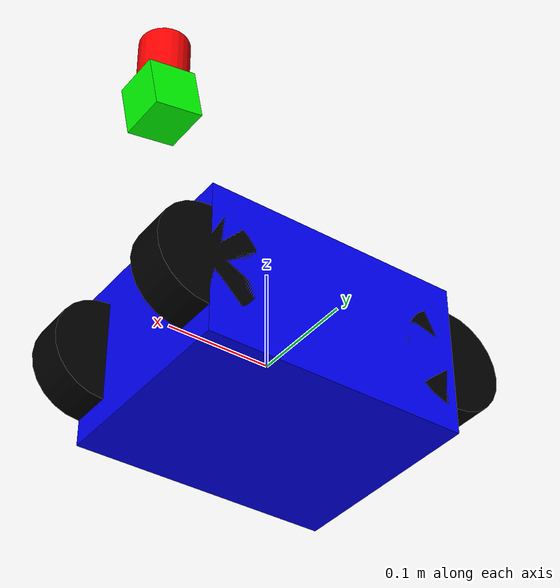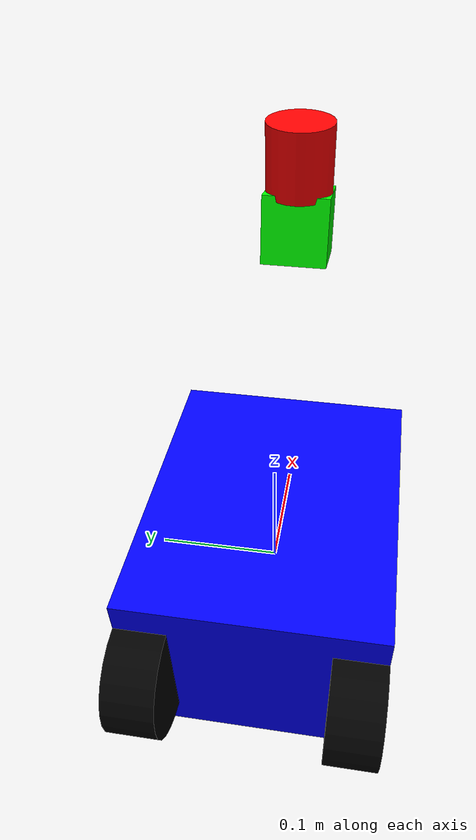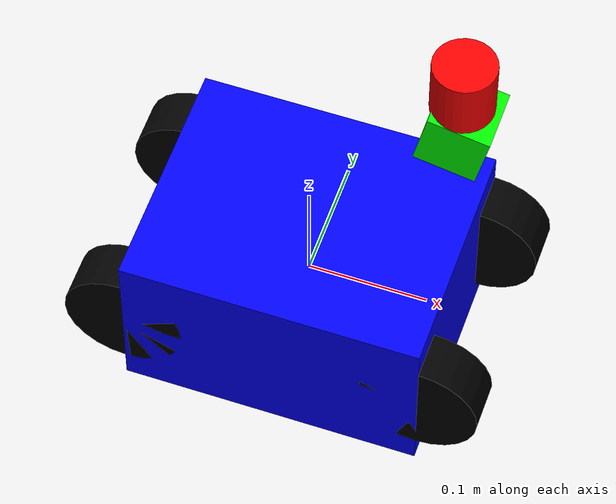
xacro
<?xml version="1.0"?>
<robot xmlns:xacro="http://www.ros.org/wiki/xacro" name="ydlidar_robot_bringup">

  <!-- Constants -->
  <xacro:property name="PI" value="3.14159265359"/>
  <xacro:property name="base_mass" value="5.0"/>
  <xacro:property name="wheel_mass" value="0.5"/>
  <xacro:property name="wheel_radius" value="0.05"/>
  <xacro:property name="wheel_width" value="0.04"/>
  <xacro:property name="wheel_separation" value="0.16"/>
  <xacro:property name="base_length" value="0.25"/>
  <xacro:property name="base_width" value="0.20"/>
  <xacro:property name="base_height" value="0.15"/>

  <!-- Base Link -->
  <link name="base_link">
    <inertial>
      <mass value="${base_mass}"/>
      <inertia ixx="0.01" ixy="0.0" ixz="0.0" iyy="0.01" iyz="0.0" izz="0.02"/>
    </inertial>
    <visual>
      <geometry>
        <box size="${base_length} ${base_width} ${base_height}"/>
      </geometry>
      <material name="blue">
        <color rgba="0.0 0.0 1.0 1.0"/>
      </material>
    </visual>
    <collision>
      <geometry>
        <box size="${base_length} ${base_width} ${base_height}"/>
      </geometry>
    </collision>
  </link>

  <!-- Wheel Macro -->
  <xacro:macro name="wheel" params="name x_pos y_pos">
    <link name="${name}_link">
      <inertial>
        <mass value="${wheel_mass}"/>
        <inertia ixx="0.001" ixy="0.0" ixz="0.0" iyy="0.001" iyz="0.0" izz="0.001"/>
      </inertial>
      <visual>
        <geometry>
          <cylinder radius="${wheel_radius}" length="${wheel_width}"/>
        </geometry>
        <origin xyz="0 0 0" rpy="${PI/2} 0 0"/>
        <material name="black">
          <color rgba="0 0 0 1"/>
        </material>
      </visual>
      <collision>
        <geometry>
          <cylinder radius="${wheel_radius}" length="${wheel_width}"/>
        </geometry>
        <origin xyz="0 0 0" rpy="${PI/2} 0 0"/>
      </collision>
    </link>

    <joint name="${name}_joint" type="revolute">
      <parent link="base_link"/>
      <child link="${name}_link"/>
      <origin xyz="${x_pos} ${y_pos} 0" rpy="0 0 0"/>
      <axis xyz="0 1 0"/>
      <limit effort="10" velocity="5" lower="-${PI}" upper="${PI}"/>
      <dynamics damping="0.1"/>
    </joint>
  </xacro:macro>

  <!-- 4 Wheels -->
  <xacro:wheel name="wheel_front_left" x_pos="${base_length/2}" y_pos="${wheel_separation/2}"/>
  <xacro:wheel name="wheel_front_right" x_pos="${base_length/2}" y_pos="${-wheel_separation/2}"/>
  <xacro:wheel name="wheel_rear_left" x_pos="${-base_length/2}" y_pos="${wheel_separation/2}"/>
  <xacro:wheel name="wheel_rear_right" x_pos="${-base_length/2}" y_pos="${-wheel_separation/2}"/>

  <!-- Laser/LIDAR Frame -->
  <link name="laser_frame">
    <inertial>
      <mass value="0.2"/>
      <inertia ixx="0.0001" ixy="0.0" ixz="0.0" iyy="0.0001" iyz="0.0" izz="0.0001"/>
    </inertial>
    <visual>
      <geometry>
        <cylinder radius="0.025" length="0.05"/>
      </geometry>
      <material name="red">
        <color rgba="1 0 0 1"/>
      </material>
    </visual>
  </link>

  <joint name="laser_joint" type="fixed">
    <parent link="base_link"/>
    <child link="laser_frame"/>
    <origin xyz="0.12 0 0.3" rpy="0 0 0"/>
  </joint>

  <!-- Camera Frame (cho object detection) -->
  <link name="camera_frame">
    <inertial>
      <mass value="0.1"/>
      <inertia ixx="0.00001" ixy="0.0" ixz="0.0" iyy="0.00001" iyz="0.0" izz="0.00001"/>
    </inertial>
    <visual>
      <geometry>
        <box size="0.05 0.05 0.05"/>
      </geometry>
      <material name="green">
        <color rgba="0 1 0 1"/>
      </material>
    </visual>
  </link>

  <joint name="camera_joint" type="fixed">
    <parent link="base_link"/>
    <child link="camera_frame"/>
    <origin xyz="0.12 0 0.25" rpy="0 0.2 0"/>
  </joint>

  <!-- Servo Frame (n?u dùng) -->
  <link name="servo_link"/>
  <joint name="servo_joint" type="revolute">
    <parent link="base_link"/>
    <child link="servo_link"/>
    <origin xyz="0.1 0 0.15" rpy="0 0 0"/>
    <axis xyz="0 0 1"/>
    <limit effort="5" velocity="1.57" lower="-1.57" upper="1.57"/>
  </joint>

</robot>
